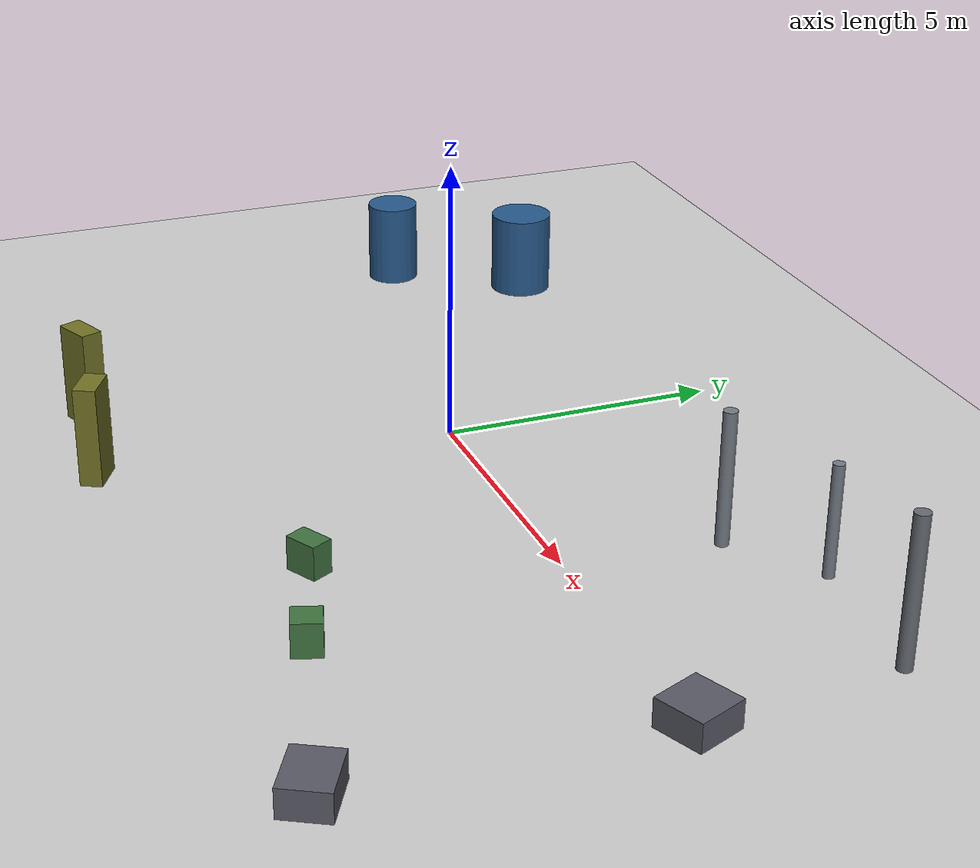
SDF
<sdf version="1.5">
 <world name="water_plant">
  <physics type="ode">
   <max_step_size>0.0002</max_step_size>
   <real_time_factor>1</real_time_factor>
   <real_time_update_rate>5000</real_time_update_rate>
   <gravity>0 0 -9.81</gravity>
   <ode>
    <solver><type>quick</type><iters>50</iters><sor>1.3</sor></solver>
    <constraints>
     <cfm>0.0</cfm>
     <erp>0.2</erp>
     <contact_max_correcting_vel>10.0</contact_max_correcting_vel>
     <contact_surface_layer>0.001</contact_surface_layer>
    </constraints>
   </ode>
  </physics>
  <scene><sky><clouds><speed>8</speed></clouds></sky><ambient>0.6 0.6 0.6 1</ambient></scene>
  <include><uri>model://sun</uri></include>
  <include><uri>model://ground_plane</uri></include>
  <model name="pipe_v1">
   <static>true</static>
   <link name="link">
    <pose>5.3 2.7 1.2 0 0 0</pose>
    <collision name="col">
     <geometry><cylinder><radius>0.12</radius><length>2.4</length></cylinder></geometry>
    </collision>
    <visual name="vis">
     <geometry><cylinder><radius>0.12</radius><length>2.4</length></cylinder></geometry>
     <material><ambient>0.55 0.58 0.62 1</ambient><diffuse>0.45 0.48 0.52 1</diffuse></material>
    </visual>
   </link>
  </model>
  <model name="pipe_v2">
   <static>true</static>
   <link name="link">
    <pose>6.8 3.8 1.0 0 0 0</pose>
    <collision name="col">
     <geometry><cylinder><radius>0.10</radius><length>2.0</length></cylinder></geometry>
    </collision>
    <visual name="vis">
     <geometry><cylinder><radius>0.10</radius><length>2.0</length></cylinder></geometry>
     <material><ambient>0.55 0.58 0.62 1</ambient><diffuse>0.45 0.48 0.52 1</diffuse></material>
    </visual>
   </link>
  </model>
  <model name="pipe_v3">
   <static>true</static>
   <link name="link">
    <pose>9.5 3.5 1.3 0 0 0</pose>
    <collision name="col">
     <geometry><cylinder><radius>0.13</radius><length>2.6</length></cylinder></geometry>
    </collision>
    <visual name="vis">
     <geometry><cylinder><radius>0.13</radius><length>2.6</length></cylinder></geometry>
     <material><ambient>0.5 0.52 0.55 1</ambient><diffuse>0.4 0.42 0.45 1</diffuse></material>
    </visual>
   </link>
  </model>
  <model name="pump_base_1">
   <static>true</static>
   <link name="link">
    <pose>9.8 0.0 0.25 0 0 0.4</pose>
    <collision name="col"><geometry><box><size>0.9 0.9 0.5</size></box></geometry></collision>
    <visual name="vis">
     <geometry><box><size>0.9 0.9 0.5</size></box></geometry>
     <material><ambient>0.4 0.4 0.45 1</ambient><diffuse>0.35 0.35 0.4 1</diffuse></material>
    </visual>
   </link>
  </model>
  <model name="pump_base_2">
   <static>true</static>
   <link name="link">
    <pose>9.5 -5.5 0.25 0 0 -0.5</pose>
    <collision name="col"><geometry><box><size>1.0 0.8 0.5</size></box></geometry></collision>
    <visual name="vis">
     <geometry><box><size>1.0 0.8 0.5</size></box></geometry>
     <material><ambient>0.4 0.4 0.45 1</ambient><diffuse>0.35 0.35 0.4 1</diffuse></material>
    </visual>
   </link>
  </model>
  <model name="valve_box_1">
   <static>true</static>
   <link name="link">
    <pose>3.8 -3.8 0.3 0 0 0.5</pose>
    <collision name="col"><geometry><box><size>0.6 0.4 0.6</size></box></geometry></collision>
    <visual name="vis">
     <geometry><box><size>0.6 0.4 0.6</size></box></geometry>
     <material><ambient>0.3 0.5 0.3 1</ambient><diffuse>0.25 0.45 0.25 1</diffuse></material>
    </visual>
   </link>
  </model>
  <model name="valve_box_2">
   <static>true</static>
   <link name="link">
    <pose>6.0 -4.5 0.3 0 0 -0.3</pose>
    <collision name="col"><geometry><box><size>0.5 0.5 0.6</size></box></geometry></collision>
    <visual name="vis">
     <geometry><box><size>0.5 0.5 0.6</size></box></geometry>
     <material><ambient>0.3 0.5 0.3 1</ambient><diffuse>0.25 0.45 0.25 1</diffuse></material>
    </visual>
   </link>
  </model>
  <model name="storage_tank_1">
   <static>true</static>
   <link name="link">
    <pose>-6.0 3.8 0.8 0 0 0</pose>
    <collision name="col">
     <geometry><cylinder><radius>0.6</radius><length>1.6</length></cylinder></geometry>
    </collision>
    <visual name="vis">
     <geometry><cylinder><radius>0.6</radius><length>1.6</length></cylinder></geometry>
     <material><ambient>0.2 0.4 0.6 1</ambient><diffuse>0.15 0.35 0.55 1</diffuse></material>
    </visual>
   </link>
  </model>
  <model name="storage_tank_2">
   <static>true</static>
   <link name="link">
    <pose>-7.5 1.5 0.8 0 0 0</pose>
    <collision name="col">
     <geometry><cylinder><radius>0.5</radius><length>1.6</length></cylinder></geometry>
    </collision>
    <visual name="vis">
     <geometry><cylinder><radius>0.5</radius><length>1.6</length></cylinder></geometry>
     <material><ambient>0.2 0.4 0.6 1</ambient><diffuse>0.15 0.35 0.55 1</diffuse></material>
    </visual>
   </link>
  </model>
  <model name="control_cabinet_1">
   <static>true</static>
   <link name="link">
    <pose>-2.8 -6.0 0.9 0 0 0.4</pose>
    <collision name="col"><geometry><box><size>0.7 0.4 1.8</size></box></geometry></collision>
    <visual name="vis">
     <geometry><box><size>0.7 0.4 1.8</size></box></geometry>
     <material><ambient>0.5 0.5 0.2 1</ambient><diffuse>0.45 0.45 0.15 1</diffuse></material>
    </visual>
   </link>
  </model>
  <model name="control_cabinet_2">
   <static>true</static>
   <link name="link">
    <pose>-0.5 -6.3 0.9 0 0 -0.5</pose>
    <collision name="col"><geometry><box><size>0.7 0.4 1.8</size></box></geometry></collision>
    <visual name="vis">
     <geometry><box><size>0.7 0.4 1.8</size></box></geometry>
     <material><ambient>0.5 0.5 0.2 1</ambient><diffuse>0.45 0.45 0.15 1</diffuse></material>
    </visual>
   </link>
  </model>
 </world>
</sdf>
